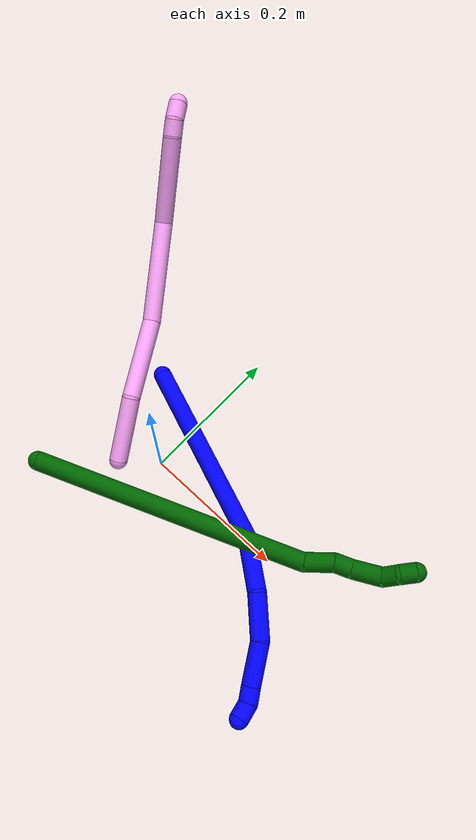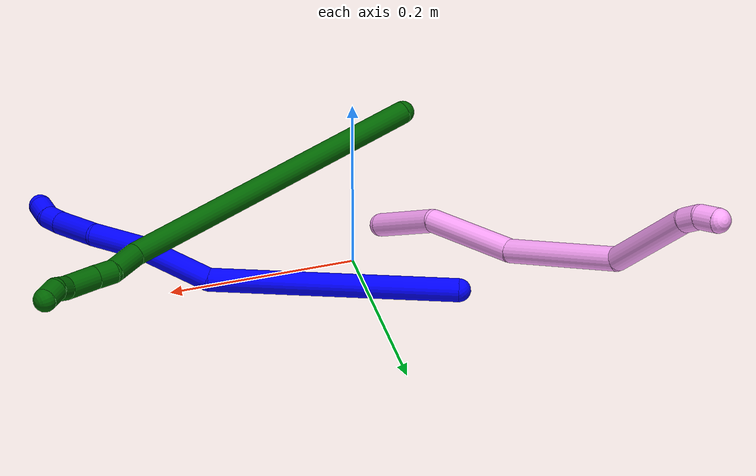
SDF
<sdf version="1.7">
 <world name="default">
  <model name="photoneo_s_sensor">
   <static>1</static>
   <pose>0 0 2 1.57079 1.57079 3.14159</pose>
   <link name="link">
    <inertial><mass>0.1</mass></inertial>
    <sensor name="sensor" type="depth">
     <update_rate>30</update_rate>
     <camera>
      <horizontal_fov>1.22</horizontal_fov>
      <image><width>1920</width><height>1200</height><format>B8G8R8</format></image>
      <clip><near>0.1</near><far>4</far></clip>
      <depth_camera><output>points</output></depth_camera>
     </camera>
     <plugin name="camera_plugin" filename="libgazebo_ros_depth_camera.so">
      <baseline>0.2</baseline>
      <alwaysOn>1</alwaysOn>
      <updateRate>0.0</updateRate>
      <cameraName>camera_ir</cameraName>
      <imageTopicName>/camera/color/image_raw</imageTopicName>
      <cameraInfoTopicName>/camera/color/camera_info</cameraInfoTopicName>
      <depthImageTopicName>/camera/depth/image_raw</depthImageTopicName>
      <depthImageCameraInfoTopicName>/camera/depth/camera_info</depthImageCameraInfoTopicName>
      <pointCloudTopicName>/camera/depth/points</pointCloudTopicName>
      <frameName>fr_optical</frameName>
      <pointCloudCutoff>0.1</pointCloudCutoff>
      <pointCloudCutoffMax>2.0</pointCloudCutoffMax>
      <distortionK1>0</distortionK1>
      <distortionK2>0</distortionK2>
      <distortionK3>0</distortionK3>
      <distortionT1>0</distortionT1>
      <distortionT2>0</distortionT2>
      <CxPrime>0</CxPrime>
      <Cx>0</Cx>
      <Cy>0</Cy>
      <focalLength>0</focalLength>
      <hackBaseline>0</hackBaseline>
     </plugin>
    </sensor>
   </link>
  </model>
  <model name="bin">
   <static>1</static>
   <link name="bottom">
    <collision name="collision-bottom">
     <pose>0 0 -0.01 0 -0 0</pose>
     <geometry><box><size>0.8 0.6 0.02</size></box></geometry>
     <surface>
      <friction><ode><mu>100</mu><mu2>100</mu2></ode></friction>
      <contact><collide_bitmask>65535</collide_bitmask></contact>
     </surface>
    </collision>
   </link>
   <link name="west_wall">
    <collision name="collision-west_wall">
     <pose>-0.41 0 0.1 0 -0 0</pose>
     <geometry><box><size>0.02 0.6 0.2</size></box></geometry>
     <surface>
      <friction><ode><mu>100</mu><mu2>100</mu2></ode></friction>
      <contact><collide_bitmask>65535</collide_bitmask></contact>
     </surface>
    </collision>
   </link>
   <link name="east_wall">
    <collision name="collision-east_wall">
     <pose>0.41 0 0.1 0 -0 0</pose>
     <geometry><box><size>0.02 0.6 0.2</size></box></geometry>
     <surface>
      <friction><ode><mu>100</mu><mu2>100</mu2></ode></friction>
      <contact><collide_bitmask>65535</collide_bitmask></contact>
     </surface>
    </collision>
   </link>
   <link name="south_wall">
    <collision name="collision-south_wall">
     <pose>0 -0.31 0.1 0 -0 0</pose>
     <geometry><box><size>0.8 0.02 0.2</size></box></geometry>
     <surface>
      <friction><ode><mu>100</mu><mu2>100</mu2></ode></friction>
      <contact><collide_bitmask>65535</collide_bitmask></contact>
     </surface>
    </collision>
   </link>
   <link name="north_wall">
    <collision name="collision-north_wall">
     <pose>0 0.31 0.1 0 -0 0</pose>
     <geometry><box><size>0.8 0.02 0.2</size></box></geometry>
     <surface>
      <friction><ode><mu>100</mu><mu2>100</mu2></ode></friction>
      <contact><collide_bitmask>65535</collide_bitmask></contact>
     </surface>
    </collision>
   </link>
  </model>
  <model name="1">
   <static>0</static>
   <link name="1">
    <collision name="collision-cylinder-e_1_1_4">
     <pose>0.055363 -0.040439 0.112895 0.343963 0.432514 0.076283</pose>
     <geometry><cylinder><radius>0.0125</radius><length>0.264164</length></cylinder></geometry>
     <surface>
      <friction><ode><mu>1.16</mu><mu2>1.16</mu2><slip1>0</slip1><slip2>0</slip2></ode></friction>
      <contact><ode><kp>1e+06</kp><kd>1</kd><max_vel>0</max_vel><min_depth>0.001</min_depth></ode></contact>
     </surface>
    </collision>
    <visual name="visual-cylinder-e_1_1_4">
     <pose>0.055363 -0.040439 0.112895 0.343963 0.432514 0.076283</pose>
     <geometry><cylinder><radius>0.0125</radius><length>0.264164</length></cylinder></geometry>
     <material><ambient>0 0 1 1</ambient></material>
    </visual>
    <collision name="collision-cylinder-e_2_4_5">
     <pose>0.139225 -0.095589 0.249295 0.559229 0.799096 0.241315</pose>
     <geometry><cylinder><radius>0.0125</radius><length>0.079526</length></cylinder></geometry>
     <surface>
      <friction><ode><mu>1.16</mu><mu2>1.16</mu2><slip1>0</slip1><slip2>0</slip2></ode></friction>
      <contact><ode><kp>1e+06</kp><kd>1</kd><max_vel>0</max_vel><min_depth>0.001</min_depth></ode></contact>
     </surface>
    </collision>
    <visual name="visual-cylinder-e_2_4_5">
     <pose>0.139225 -0.095589 0.249295 0.559229 0.799096 0.241315</pose>
     <geometry><cylinder><radius>0.0125</radius><length>0.079526</length></cylinder></geometry>
     <material><ambient>0 0 1 1</ambient></material>
    </visual>
    <collision name="collision-cylinder-e_3_5_6">
     <pose>0.188977 -0.112084 0.293387 0.086408 0.799438 0.036523</pose>
     <geometry><cylinder><radius>0.0125</radius><length>0.059287</length></cylinder></geometry>
     <surface>
      <friction><ode><mu>1.16</mu><mu2>1.16</mu2><slip1>0</slip1><slip2>0</slip2></ode></friction>
      <contact><ode><kp>1e+06</kp><kd>1</kd><max_vel>0</max_vel><min_depth>0.001</min_depth></ode></contact>
     </surface>
    </collision>
    <visual name="visual-cylinder-e_3_5_6">
     <pose>0.188977 -0.112084 0.293387 0.086408 0.799438 0.036523</pose>
     <geometry><cylinder><radius>0.0125</radius><length>0.059287</length></cylinder></geometry>
     <material><ambient>0 0 1 1</ambient></material>
    </visual>
    <collision name="collision-cylinder-e_4_6_7">
     <pose>0.232212 -0.108039 0.329814 -0.352584 0.916012 -0.175186</pose>
     <geometry><cylinder><radius>0.0125</radius><length>0.055425</length></cylinder></geometry>
     <surface>
      <friction><ode><mu>1.16</mu><mu2>1.16</mu2><slip1>0</slip1><slip2>0</slip2></ode></friction>
      <contact><ode><kp>1e+06</kp><kd>1</kd><max_vel>0</max_vel><min_depth>0.001</min_depth></ode></contact>
     </surface>
    </collision>
    <visual name="visual-cylinder-e_4_6_7">
     <pose>0.232212 -0.108039 0.329814 -0.352584 0.916012 -0.175186</pose>
     <geometry><cylinder><radius>0.0125</radius><length>0.055425</length></cylinder></geometry>
     <material><ambient>0 0 1 1</ambient></material>
    </visual>
    <collision name="collision-cylinder-e_5_7_8">
     <pose>0.262682 -0.101406 0.3511 -0.14687 0.995387 -0.079897</pose>
     <geometry><cylinder><radius>0.0125</radius><length>0.020239</length></cylinder></geometry>
     <surface>
      <friction><ode><mu>1.16</mu><mu2>1.16</mu2><slip1>0</slip1><slip2>0</slip2></ode></friction>
      <contact><ode><kp>1e+06</kp><kd>1</kd><max_vel>0</max_vel><min_depth>0.001</min_depth></ode></contact>
     </surface>
    </collision>
    <visual name="visual-cylinder-e_5_7_8">
     <pose>0.262682 -0.101406 0.3511 -0.14687 0.995387 -0.079897</pose>
     <geometry><cylinder><radius>0.0125</radius><length>0.020239</length></cylinder></geometry>
     <material><ambient>0 0 1 1</ambient></material>
    </visual>
    <collision name="collision-cylinder-e_6_8_2">
     <pose>0.28145 -0.098634 0.358683 -0.743897 1.29552 -0.574065</pose>
     <geometry><cylinder><radius>0.0125</radius><length>0.021359</length></cylinder></geometry>
     <surface>
      <friction><ode><mu>1.16</mu><mu2>1.16</mu2><slip1>0</slip1><slip2>0</slip2></ode></friction>
      <contact><ode><kp>1e+06</kp><kd>1</kd><max_vel>0</max_vel><min_depth>0.001</min_depth></ode></contact>
     </surface>
    </collision>
    <visual name="visual-cylinder-e_6_8_2">
     <pose>0.28145 -0.098634 0.358683 -0.743897 1.29552 -0.574065</pose>
     <geometry><cylinder><radius>0.0125</radius><length>0.021359</length></cylinder></geometry>
     <material><ambient>0 0 1 1</ambient></material>
    </visual>
    <collision name="collision-sphere-2">
     <pose>0.291727 -0.096668 0.360819 0 -0 0</pose>
     <geometry><sphere><radius>0.0125</radius></sphere></geometry>
     <surface>
      <friction><ode><mu>1.16</mu><mu2>1.16</mu2><slip1>0</slip1><slip2>0</slip2></ode></friction>
      <contact><ode><kp>1e+06</kp><kd>1</kd><max_vel>0</max_vel><min_depth>0.001</min_depth></ode></contact>
     </surface>
    </collision>
    <visual name="visual-sphere-2">
     <pose>0.291727 -0.096668 0.360819 0 -0 0</pose>
     <geometry><sphere><radius>0.0125</radius></sphere></geometry>
     <material><ambient>0 0 1 1</ambient></material>
    </visual>
    <collision name="collision-sphere-4">
     <pose>0.110726 -0.080878 0.22579 0 -0 0</pose>
     <geometry><sphere><radius>0.0125</radius></sphere></geometry>
     <surface>
      <friction><ode><mu>1.16</mu><mu2>1.16</mu2><slip1>0</slip1><slip2>0</slip2></ode></friction>
      <contact><ode><kp>1e+06</kp><kd>1</kd><max_vel>0</max_vel><min_depth>0.001</min_depth></ode></contact>
     </surface>
    </collision>
    <visual name="visual-sphere-4">
     <pose>0.110726 -0.080878 0.22579 0 -0 0</pose>
     <geometry><sphere><radius>0.0125</radius></sphere></geometry>
     <material><ambient>0 0 1 1</ambient></material>
    </visual>
    <collision name="collision-sphere-1">
     <geometry><sphere><radius>0.0125</radius></sphere></geometry>
     <surface>
      <friction><ode><mu>1.16</mu><mu2>1.16</mu2><slip1>0</slip1><slip2>0</slip2></ode></friction>
      <contact><ode><kp>1e+06</kp><kd>1</kd><max_vel>0</max_vel><min_depth>0.001</min_depth></ode></contact>
     </surface>
    </collision>
    <visual name="visual-sphere-1">
     <geometry><sphere><radius>0.0125</radius></sphere></geometry>
     <material><ambient>0 0 1 1</ambient></material>
    </visual>
    <collision name="collision-sphere-8">
     <pose>0.271172 -0.1006 0.356547 0 -0 0</pose>
     <geometry><sphere><radius>0.0125</radius></sphere></geometry>
     <surface>
      <friction><ode><mu>1.16</mu><mu2>1.16</mu2><slip1>0</slip1><slip2>0</slip2></ode></friction>
      <contact><ode><kp>1e+06</kp><kd>1</kd><max_vel>0</max_vel><min_depth>0.001</min_depth></ode></contact>
     </surface>
    </collision>
    <visual name="visual-sphere-8">
     <pose>0.271172 -0.1006 0.356547 0 -0 0</pose>
     <geometry><sphere><radius>0.0125</radius></sphere></geometry>
     <material><ambient>0 0 1 1</ambient></material>
    </visual>
    <collision name="collision-sphere-5">
     <pose>0.167724 -0.110301 0.2728 0 -0 0</pose>
     <geometry><sphere><radius>0.0125</radius></sphere></geometry>
     <surface>
      <friction><ode><mu>1.16</mu><mu2>1.16</mu2><slip1>0</slip1><slip2>0</slip2></ode></friction>
      <contact><ode><kp>1e+06</kp><kd>1</kd><max_vel>0</max_vel><min_depth>0.001</min_depth></ode></contact>
     </surface>
    </collision>
    <visual name="visual-sphere-5">
     <pose>0.167724 -0.110301 0.2728 0 -0 0</pose>
     <geometry><sphere><radius>0.0125</radius></sphere></geometry>
     <material><ambient>0 0 1 1</ambient></material>
    </visual>
    <collision name="collision-sphere-6">
     <pose>0.21023 -0.113867 0.313975 0 -0 0</pose>
     <geometry><sphere><radius>0.0125</radius></sphere></geometry>
     <surface>
      <friction><ode><mu>1.16</mu><mu2>1.16</mu2><slip1>0</slip1><slip2>0</slip2></ode></friction>
      <contact><ode><kp>1e+06</kp><kd>1</kd><max_vel>0</max_vel><min_depth>0.001</min_depth></ode></contact>
     </surface>
    </collision>
    <visual name="visual-sphere-6">
     <pose>0.21023 -0.113867 0.313975 0 -0 0</pose>
     <geometry><sphere><radius>0.0125</radius></sphere></geometry>
     <material><ambient>0 0 1 1</ambient></material>
    </visual>
    <collision name="collision-sphere-7">
     <pose>0.254193 -0.102212 0.345652 0 -0 0</pose>
     <geometry><sphere><radius>0.0125</radius></sphere></geometry>
     <surface>
      <friction><ode><mu>1.16</mu><mu2>1.16</mu2><slip1>0</slip1><slip2>0</slip2></ode></friction>
      <contact><ode><kp>1e+06</kp><kd>1</kd><max_vel>0</max_vel><min_depth>0.001</min_depth></ode></contact>
     </surface>
    </collision>
    <visual name="visual-sphere-7">
     <pose>0.254193 -0.102212 0.345652 0 -0 0</pose>
     <geometry><sphere><radius>0.0125</radius></sphere></geometry>
     <material><ambient>0 0 1 1</ambient></material>
    </visual>
    <inertial>
     <pose>0.122198 -0.070153 0.200178 0 -0 0</pose>
     <mass>0.5</mass>
     <inertia>
      <ixx>0.001591</ixx>
      <ixy>0</ixy>
      <ixz>0</ixz>
      <iyy>0.001653</iyy>
      <iyz>0</iyz>
      <izz>-0.000195</izz>
     </inertia>
    </inertial>
   </link>
   <pose>-0.08909 0.094238 0.011497 -2.04765 -0.279282 -1.46933</pose>
  </model>
  <model name="4">
   <static>0</static>
   <link name="4">
    <collision name="collision-cylinder-e_1_1_4">
     <pose>-0.007543 0.005844 0.044008 -0.132029 -0.168305 0.011153</pose>
     <geometry><cylinder><radius>0.0125</radius><length>0.090061</length></cylinder></geometry>
     <surface>
      <friction><ode><mu>1.16</mu><mu2>1.16</mu2><slip1>0</slip1><slip2>0</slip2></ode></friction>
      <contact><ode><kp>1e+06</kp><kd>1</kd><max_vel>0</max_vel><min_depth>0.001</min_depth></ode></contact>
     </surface>
    </collision>
    <visual name="visual-cylinder-e_1_1_4">
     <pose>-0.007543 0.005844 0.044008 -0.132029 -0.168305 0.011153</pose>
     <geometry><cylinder><radius>0.0125</radius><length>0.090061</length></cylinder></geometry>
     <material><ambient>1 0.65098 0.996078 1</ambient></material>
    </visual>
    <collision name="collision-cylinder-e_2_4_5">
     <pose>-0.019279 0.038085 0.136435 -0.499116 -0.075888 0.01935</pose>
     <geometry><cylinder><radius>0.0125</radius><length>0.110613</length></cylinder></geometry>
     <surface>
      <friction><ode><mu>1.16</mu><mu2>1.16</mu2><slip1>0</slip1><slip2>0</slip2></ode></friction>
      <contact><ode><kp>1e+06</kp><kd>1</kd><max_vel>0</max_vel><min_depth>0.001</min_depth></ode></contact>
     </surface>
    </collision>
    <visual name="visual-cylinder-e_2_4_5">
     <pose>-0.019279 0.038085 0.136435 -0.499116 -0.075888 0.01935</pose>
     <geometry><cylinder><radius>0.0125</radius><length>0.110613</length></cylinder></geometry>
     <material><ambient>1 0.65098 0.996078 1</ambient></material>
    </visual>
    <collision name="collision-cylinder-e_3_5_6">
     <pose>-0.039655 0.086179 0.248829 -0.326993 -0.235125 0.038963</pose>
     <geometry><cylinder><radius>0.0125</radius><length>0.13893</length></cylinder></geometry>
     <surface>
      <friction><ode><mu>1.16</mu><mu2>1.16</mu2><slip1>0</slip1><slip2>0</slip2></ode></friction>
      <contact><ode><kp>1e+06</kp><kd>1</kd><max_vel>0</max_vel><min_depth>0.001</min_depth></ode></contact>
     </surface>
    </collision>
    <visual name="visual-cylinder-e_3_5_6">
     <pose>-0.039655 0.086179 0.248829 -0.326993 -0.235125 0.038963</pose>
     <geometry><cylinder><radius>0.0125</radius><length>0.13893</length></cylinder></geometry>
     <material><ambient>1 0.65098 0.996078 1</ambient></material>
    </visual>
    <collision name="collision-cylinder-e_4_6_7">
     <pose>-0.071448 0.098709 0.367973 0.164664 -0.272181 -0.022599</pose>
     <geometry><cylinder><radius>0.0125</radius><length>0.11613</length></cylinder></geometry>
     <surface>
      <friction><ode><mu>1.16</mu><mu2>1.16</mu2><slip1>0</slip1><slip2>0</slip2></ode></friction>
      <contact><ode><kp>1e+06</kp><kd>1</kd><max_vel>0</max_vel><min_depth>0.001</min_depth></ode></contact>
     </surface>
    </collision>
    <visual name="visual-cylinder-e_4_6_7">
     <pose>-0.071448 0.098709 0.367973 0.164664 -0.272181 -0.022599</pose>
     <geometry><cylinder><radius>0.0125</radius><length>0.11613</length></cylinder></geometry>
     <material><ambient>1 0.65098 0.996078 1</ambient></material>
    </visual>
    <collision name="collision-cylinder-e_5_7_8">
     <pose>-0.089758 0.090137 0.433556 -0.057132 -0.253349 0.007278</pose>
     <geometry><cylinder><radius>0.0125</radius><length>0.021546</length></cylinder></geometry>
     <surface>
      <friction><ode><mu>1.16</mu><mu2>1.16</mu2><slip1>0</slip1><slip2>0</slip2></ode></friction>
      <contact><ode><kp>1e+06</kp><kd>1</kd><max_vel>0</max_vel><min_depth>0.001</min_depth></ode></contact>
     </surface>
    </collision>
    <visual name="visual-cylinder-e_5_7_8">
     <pose>-0.089758 0.090137 0.433556 -0.057132 -0.253349 0.007278</pose>
     <geometry><cylinder><radius>0.0125</radius><length>0.021546</length></cylinder></geometry>
     <material><ambient>1 0.65098 0.996078 1</ambient></material>
    </visual>
    <collision name="collision-cylinder-e_6_8_2">
     <pose>-0.093952 0.094919 0.454423 -0.380815 -0.131888 0.025456</pose>
     <geometry><cylinder><radius>0.0125</radius><length>0.022722</length></cylinder></geometry>
     <surface>
      <friction><ode><mu>1.16</mu><mu2>1.16</mu2><slip1>0</slip1><slip2>0</slip2></ode></friction>
      <contact><ode><kp>1e+06</kp><kd>1</kd><max_vel>0</max_vel><min_depth>0.001</min_depth></ode></contact>
     </surface>
    </collision>
    <visual name="visual-cylinder-e_6_8_2">
     <pose>-0.093952 0.094919 0.454423 -0.380815 -0.131888 0.025456</pose>
     <geometry><cylinder><radius>0.0125</radius><length>0.022722</length></cylinder></geometry>
     <material><ambient>1 0.65098 0.996078 1</ambient></material>
    </visual>
    <collision name="collision-sphere-2">
     <pose>-0.095446 0.099104 0.464879 0 -0 0</pose>
     <geometry><sphere><radius>0.0125</radius></sphere></geometry>
     <surface>
      <friction><ode><mu>1.16</mu><mu2>1.16</mu2><slip1>0</slip1><slip2>0</slip2></ode></friction>
      <contact><ode><kp>1e+06</kp><kd>1</kd><max_vel>0</max_vel><min_depth>0.001</min_depth></ode></contact>
     </surface>
    </collision>
    <visual name="visual-sphere-2">
     <pose>-0.095446 0.099104 0.464879 0 -0 0</pose>
     <geometry><sphere><radius>0.0125</radius></sphere></geometry>
     <material><ambient>1 0.65098 0.996078 1</ambient></material>
    </visual>
    <collision name="collision-sphere-4">
     <pose>-0.015086 0.011689 0.088015 0 -0 0</pose>
     <geometry><sphere><radius>0.0125</radius></sphere></geometry>
     <surface>
      <friction><ode><mu>1.16</mu><mu2>1.16</mu2><slip1>0</slip1><slip2>0</slip2></ode></friction>
      <contact><ode><kp>1e+06</kp><kd>1</kd><max_vel>0</max_vel><min_depth>0.001</min_depth></ode></contact>
     </surface>
    </collision>
    <visual name="visual-sphere-4">
     <pose>-0.015086 0.011689 0.088015 0 -0 0</pose>
     <geometry><sphere><radius>0.0125</radius></sphere></geometry>
     <material><ambient>1 0.65098 0.996078 1</ambient></material>
    </visual>
    <collision name="collision-sphere-1">
     <geometry><sphere><radius>0.0125</radius></sphere></geometry>
     <surface>
      <friction><ode><mu>1.16</mu><mu2>1.16</mu2><slip1>0</slip1><slip2>0</slip2></ode></friction>
      <contact><ode><kp>1e+06</kp><kd>1</kd><max_vel>0</max_vel><min_depth>0.001</min_depth></ode></contact>
     </surface>
    </collision>
    <visual name="visual-sphere-1">
     <geometry><sphere><radius>0.0125</radius></sphere></geometry>
     <material><ambient>1 0.65098 0.996078 1</ambient></material>
    </visual>
    <collision name="collision-sphere-8">
     <pose>-0.092458 0.090733 0.443968 0 -0 0</pose>
     <geometry><sphere><radius>0.0125</radius></sphere></geometry>
     <surface>
      <friction><ode><mu>1.16</mu><mu2>1.16</mu2><slip1>0</slip1><slip2>0</slip2></ode></friction>
      <contact><ode><kp>1e+06</kp><kd>1</kd><max_vel>0</max_vel><min_depth>0.001</min_depth></ode></contact>
     </surface>
    </collision>
    <visual name="visual-sphere-8">
     <pose>-0.092458 0.090733 0.443968 0 -0 0</pose>
     <geometry><sphere><radius>0.0125</radius></sphere></geometry>
     <material><ambient>1 0.65098 0.996078 1</ambient></material>
    </visual>
    <collision name="collision-sphere-5">
     <pose>-0.023472 0.064481 0.184855 0 -0 0</pose>
     <geometry><sphere><radius>0.0125</radius></sphere></geometry>
     <surface>
      <friction><ode><mu>1.16</mu><mu2>1.16</mu2><slip1>0</slip1><slip2>0</slip2></ode></friction>
      <contact><ode><kp>1e+06</kp><kd>1</kd><max_vel>0</max_vel><min_depth>0.001</min_depth></ode></contact>
     </surface>
    </collision>
    <visual name="visual-sphere-5">
     <pose>-0.023472 0.064481 0.184855 0 -0 0</pose>
     <geometry><sphere><radius>0.0125</radius></sphere></geometry>
     <material><ambient>1 0.65098 0.996078 1</ambient></material>
    </visual>
    <collision name="collision-sphere-6">
     <pose>-0.055838 0.107877 0.312803 0 -0 0</pose>
     <geometry><sphere><radius>0.0125</radius></sphere></geometry>
     <surface>
      <friction><ode><mu>1.16</mu><mu2>1.16</mu2><slip1>0</slip1><slip2>0</slip2></ode></friction>
      <contact><ode><kp>1e+06</kp><kd>1</kd><max_vel>0</max_vel><min_depth>0.001</min_depth></ode></contact>
     </surface>
    </collision>
    <visual name="visual-sphere-6">
     <pose>-0.055838 0.107877 0.312803 0 -0 0</pose>
     <geometry><sphere><radius>0.0125</radius></sphere></geometry>
     <material><ambient>1 0.65098 0.996078 1</ambient></material>
    </visual>
    <collision name="collision-sphere-7">
     <pose>-0.087057 0.089542 0.423144 0 -0 0</pose>
     <geometry><sphere><radius>0.0125</radius></sphere></geometry>
     <surface>
      <friction><ode><mu>1.16</mu><mu2>1.16</mu2><slip1>0</slip1><slip2>0</slip2></ode></friction>
      <contact><ode><kp>1e+06</kp><kd>1</kd><max_vel>0</max_vel><min_depth>0.001</min_depth></ode></contact>
     </surface>
    </collision>
    <visual name="visual-sphere-7">
     <pose>-0.087057 0.089542 0.423144 0 -0 0</pose>
     <geometry><sphere><radius>0.0125</radius></sphere></geometry>
     <material><ambient>1 0.65098 0.996078 1</ambient></material>
    </visual>
    <inertial>
     <pose>-0.041374 0.064547 0.232047 0 -0 0</pose>
     <mass>0.5</mass>
     <inertia>
      <ixx>0.000537</ixx>
      <ixy>0</ixy>
      <ixz>0</ixz>
      <iyy>0.000537</iyy>
      <iyz>0</iyz>
      <izz>3.1e-05</izz>
     </inertia>
    </inertial>
   </link>
   <pose>-0.043148 -0.038733 0.011499 -0.924993 0.308614 0.485766</pose>
  </model>
  <model name="6">
   <static>0</static>
   <link name="6">
    <collision name="collision-cylinder-e_1_1_4">
     <pose>0.012531 0.001846 0.1791 -0.010309 0.069849 -0.00036</pose>
     <geometry><cylinder><radius>0.0125</radius><length>0.359094</length></cylinder></geometry>
     <surface>
      <friction><ode><mu>1.16</mu><mu2>1.16</mu2><slip1>0</slip1><slip2>0</slip2></ode></friction>
      <contact><ode><kp>1e+06</kp><kd>1</kd><max_vel>0</max_vel><min_depth>0.001</min_depth></ode></contact>
     </surface>
    </collision>
    <visual name="visual-cylinder-e_1_1_4">
     <pose>0.012531 0.001846 0.1791 -0.010309 0.069849 -0.00036</pose>
     <geometry><cylinder><radius>0.0125</radius><length>0.359094</length></cylinder></geometry>
     <material><ambient>0 0.392157 0.003922 1</ambient></material>
    </visual>
    <collision name="collision-cylinder-e_2_4_5">
     <pose>0.026447 0.010612 0.376074 -0.369339 0.072123 -0.013478</pose>
     <geometry><cylinder><radius>0.0125</radius><length>0.038435</length></cylinder></geometry>
     <surface>
      <friction><ode><mu>1.16</mu><mu2>1.16</mu2><slip1>0</slip1><slip2>0</slip2></ode></friction>
      <contact><ode><kp>1e+06</kp><kd>1</kd><max_vel>0</max_vel><min_depth>0.001</min_depth></ode></contact>
     </surface>
    </collision>
    <visual name="visual-cylinder-e_2_4_5">
     <pose>0.026447 0.010612 0.376074 -0.369339 0.072123 -0.013478</pose>
     <geometry><cylinder><radius>0.0125</radius><length>0.038435</length></cylinder></geometry>
     <material><ambient>0 0.392157 0.003922 1</ambient></material>
    </visual>
    <collision name="collision-cylinder-e_3_5_6">
     <pose>0.026586 0.018057 0.405107 -0.047094 -0.111012 0.002617</pose>
     <geometry><cylinder><radius>0.0125</radius><length>0.022478</length></cylinder></geometry>
     <surface>
      <friction><ode><mu>1.16</mu><mu2>1.16</mu2><slip1>0</slip1><slip2>0</slip2></ode></friction>
      <contact><ode><kp>1e+06</kp><kd>1</kd><max_vel>0</max_vel><min_depth>0.001</min_depth></ode></contact>
     </surface>
    </collision>
    <visual name="visual-cylinder-e_3_5_6">
     <pose>0.026586 0.018057 0.405107 -0.047094 -0.111012 0.002617</pose>
     <geometry><cylinder><radius>0.0125</radius><length>0.022478</length></cylinder></geometry>
     <material><ambient>0 0.392157 0.003922 1</ambient></material>
    </visual>
    <collision name="collision-cylinder-e_4_6_7">
     <pose>0.023256 0.021549 0.434894 -0.157848 -0.110119 0.008718</pose>
     <geometry><cylinder><radius>0.0125</radius><length>0.037959</length></cylinder></geometry>
     <surface>
      <friction><ode><mu>1.16</mu><mu2>1.16</mu2><slip1>0</slip1><slip2>0</slip2></ode></friction>
      <contact><ode><kp>1e+06</kp><kd>1</kd><max_vel>0</max_vel><min_depth>0.001</min_depth></ode></contact>
     </surface>
    </collision>
    <visual name="visual-cylinder-e_4_6_7">
     <pose>0.023256 0.021549 0.434894 -0.157848 -0.110119 0.008718</pose>
     <geometry><cylinder><radius>0.0125</radius><length>0.037959</length></cylinder></geometry>
     <material><ambient>0 0.392157 0.003922 1</ambient></material>
    </visual>
    <collision name="collision-cylinder-e_5_7_8">
     <pose>0.017851 0.03031 0.461582 -0.623586 -0.322648 0.104807</pose>
     <geometry><cylinder><radius>0.0125</radius><length>0.020931</length></cylinder></geometry>
     <surface>
      <friction><ode><mu>1.16</mu><mu2>1.16</mu2><slip1>0</slip1><slip2>0</slip2></ode></friction>
      <contact><ode><kp>1e+06</kp><kd>1</kd><max_vel>0</max_vel><min_depth>0.001</min_depth></ode></contact>
     </surface>
    </collision>
    <visual name="visual-cylinder-e_5_7_8">
     <pose>0.017851 0.03031 0.461582 -0.623586 -0.322648 0.104807</pose>
     <geometry><cylinder><radius>0.0125</radius><length>0.020931</length></cylinder></geometry>
     <material><ambient>0 0.392157 0.003922 1</ambient></material>
    </visual>
    <collision name="collision-cylinder-e_6_8_2">
     <pose>0.015577 0.041192 0.478825 -0.505638 0.09914 -0.025632</pose>
     <geometry><cylinder><radius>0.0125</radius><length>0.021103</length></cylinder></geometry>
     <surface>
      <friction><ode><mu>1.16</mu><mu2>1.16</mu2><slip1>0</slip1><slip2>0</slip2></ode></friction>
      <contact><ode><kp>1e+06</kp><kd>1</kd><max_vel>0</max_vel><min_depth>0.001</min_depth></ode></contact>
     </surface>
    </collision>
    <visual name="visual-cylinder-e_6_8_2">
     <pose>0.015577 0.041192 0.478825 -0.505638 0.09914 -0.025632</pose>
     <geometry><cylinder><radius>0.0125</radius><length>0.021103</length></cylinder></geometry>
     <material><ambient>0 0.392157 0.003922 1</ambient></material>
    </visual>
    <collision name="collision-sphere-2">
     <pose>0.016622 0.046277 0.488011 0 -0 0</pose>
     <geometry><sphere><radius>0.0125</radius></sphere></geometry>
     <surface>
      <friction><ode><mu>1.16</mu><mu2>1.16</mu2><slip1>0</slip1><slip2>0</slip2></ode></friction>
      <contact><ode><kp>1e+06</kp><kd>1</kd><max_vel>0</max_vel><min_depth>0.001</min_depth></ode></contact>
     </surface>
    </collision>
    <visual name="visual-sphere-2">
     <pose>0.016622 0.046277 0.488011 0 -0 0</pose>
     <geometry><sphere><radius>0.0125</radius></sphere></geometry>
     <material><ambient>0 0.392157 0.003922 1</ambient></material>
    </visual>
    <collision name="collision-sphere-4">
     <pose>0.025062 0.003693 0.358199 0 -0 0</pose>
     <geometry><sphere><radius>0.0125</radius></sphere></geometry>
     <surface>
      <friction><ode><mu>1.16</mu><mu2>1.16</mu2><slip1>0</slip1><slip2>0</slip2></ode></friction>
      <contact><ode><kp>1e+06</kp><kd>1</kd><max_vel>0</max_vel><min_depth>0.001</min_depth></ode></contact>
     </surface>
    </collision>
    <visual name="visual-sphere-4">
     <pose>0.025062 0.003693 0.358199 0 -0 0</pose>
     <geometry><sphere><radius>0.0125</radius></sphere></geometry>
     <material><ambient>0 0.392157 0.003922 1</ambient></material>
    </visual>
    <collision name="collision-sphere-1">
     <geometry><sphere><radius>0.0125</radius></sphere></geometry>
     <surface>
      <friction><ode><mu>1.16</mu><mu2>1.16</mu2><slip1>0</slip1><slip2>0</slip2></ode></friction>
      <contact><ode><kp>1e+06</kp><kd>1</kd><max_vel>0</max_vel><min_depth>0.001</min_depth></ode></contact>
     </surface>
    </collision>
    <visual name="visual-sphere-1">
     <geometry><sphere><radius>0.0125</radius></sphere></geometry>
     <material><ambient>0 0.392157 0.003922 1</ambient></material>
    </visual>
    <collision name="collision-sphere-8">
     <pose>0.014533 0.036106 0.469639 0 -0 0</pose>
     <geometry><sphere><radius>0.0125</radius></sphere></geometry>
     <surface>
      <friction><ode><mu>1.16</mu><mu2>1.16</mu2><slip1>0</slip1><slip2>0</slip2></ode></friction>
      <contact><ode><kp>1e+06</kp><kd>1</kd><max_vel>0</max_vel><min_depth>0.001</min_depth></ode></contact>
     </surface>
    </collision>
    <visual name="visual-sphere-8">
     <pose>0.014533 0.036106 0.469639 0 -0 0</pose>
     <geometry><sphere><radius>0.0125</radius></sphere></geometry>
     <material><ambient>0 0.392157 0.003922 1</ambient></material>
    </visual>
    <collision name="collision-sphere-5">
     <pose>0.027832 0.017532 0.393949 0 -0 0</pose>
     <geometry><sphere><radius>0.0125</radius></sphere></geometry>
     <surface>
      <friction><ode><mu>1.16</mu><mu2>1.16</mu2><slip1>0</slip1><slip2>0</slip2></ode></friction>
      <contact><ode><kp>1e+06</kp><kd>1</kd><max_vel>0</max_vel><min_depth>0.001</min_depth></ode></contact>
     </surface>
    </collision>
    <visual name="visual-sphere-5">
     <pose>0.027832 0.017532 0.393949 0 -0 0</pose>
     <geometry><sphere><radius>0.0125</radius></sphere></geometry>
     <material><ambient>0 0.392157 0.003922 1</ambient></material>
    </visual>
    <collision name="collision-sphere-6">
     <pose>0.025341 0.018583 0.416264 0 -0 0</pose>
     <geometry><sphere><radius>0.0125</radius></sphere></geometry>
     <surface>
      <friction><ode><mu>1.16</mu><mu2>1.16</mu2><slip1>0</slip1><slip2>0</slip2></ode></friction>
      <contact><ode><kp>1e+06</kp><kd>1</kd><max_vel>0</max_vel><min_depth>0.001</min_depth></ode></contact>
     </surface>
    </collision>
    <visual name="visual-sphere-6">
     <pose>0.025341 0.018583 0.416264 0 -0 0</pose>
     <geometry><sphere><radius>0.0125</radius></sphere></geometry>
     <material><ambient>0 0.392157 0.003922 1</ambient></material>
    </visual>
    <collision name="collision-sphere-7">
     <pose>0.02117 0.024514 0.453524 0 -0 0</pose>
     <geometry><sphere><radius>0.0125</radius></sphere></geometry>
     <surface>
      <friction><ode><mu>1.16</mu><mu2>1.16</mu2><slip1>0</slip1><slip2>0</slip2></ode></friction>
      <contact><ode><kp>1e+06</kp><kd>1</kd><max_vel>0</max_vel><min_depth>0.001</min_depth></ode></contact>
     </surface>
    </collision>
    <visual name="visual-sphere-7">
     <pose>0.02117 0.024514 0.453524 0 -0 0</pose>
     <geometry><sphere><radius>0.0125</radius></sphere></geometry>
     <material><ambient>0 0.392157 0.003922 1</ambient></material>
    </visual>
    <inertial>
     <pose>0.015398 0.007597 0.248296 0 -0 0</pose>
     <mass>0.5</mass>
     <inertia>
      <ixx>0.00388</ixx>
      <ixy>0</ixy>
      <ixz>0</ixz>
      <iyy>0.003891</iyy>
      <iyz>0</iyz>
      <izz>-0.000276</izz>
     </inertia>
    </inertial>
   </link>
   <pose>-0.091402 -0.120842 0.095563 1.58347 1.16736 1.94361</pose>
  </model>
 </world>
</sdf>
